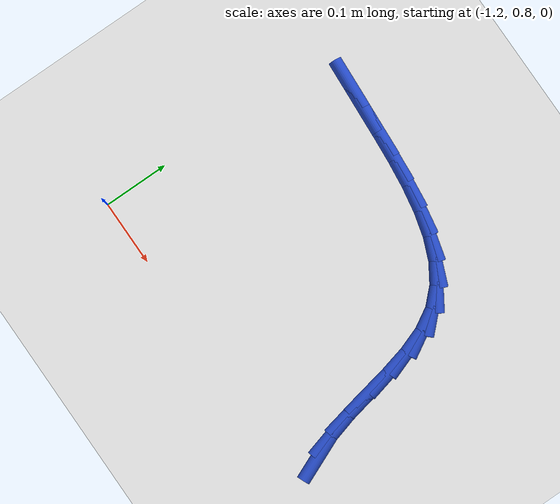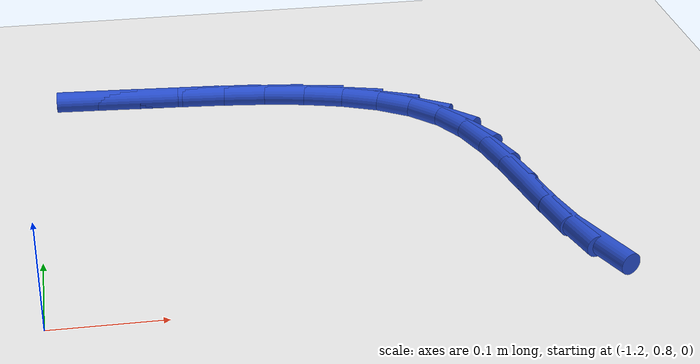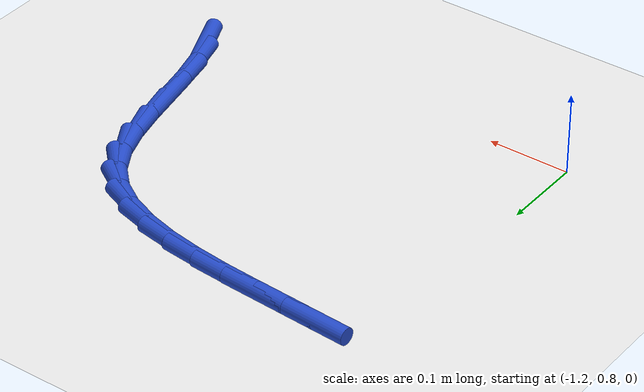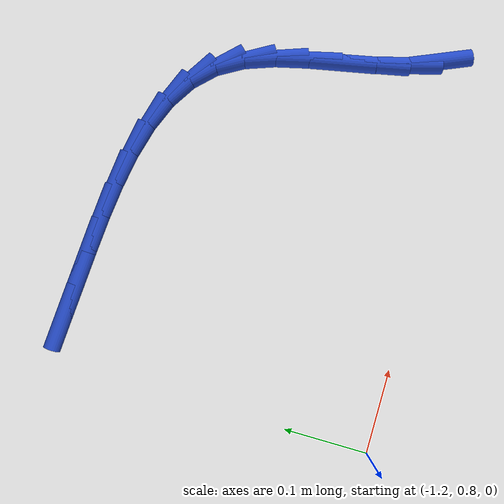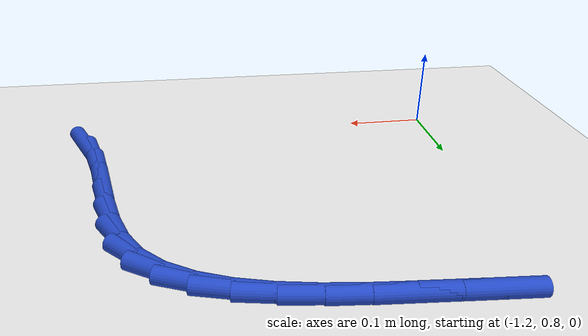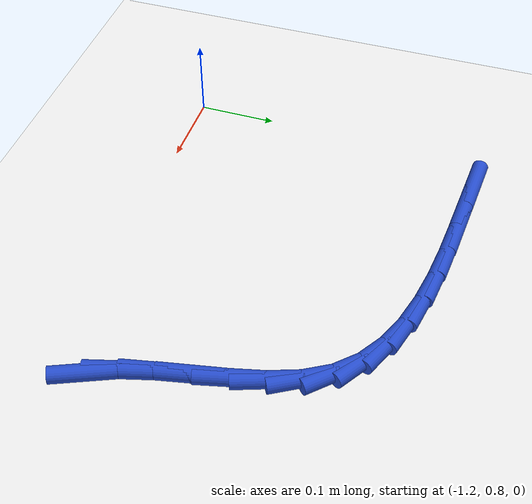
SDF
<sdf version="1.6">
 <world name="default">
  <model name="ground_plane">
   <static>1</static>
   <link name="link">
    <collision name="collision">
     <geometry><plane><normal>0 0 1</normal><size>100 100</size></plane></geometry>
     <surface><friction><ode><mu>100</mu><mu2>50</mu2></ode></friction></surface>
    </collision>
    <visual name="visual">
     <cast_shadows>0</cast_shadows>
     <geometry><plane><normal>0 0 1</normal><size>100 100</size></plane></geometry>
     <material>
      <script><uri>file://media/materials/scripts/gazebo.material</uri><name>Gazebo/WhiteGlow</name></script>
     </material>
    </visual>
   </link>
  </model>
  <model name="line">
   <link name="link_32">
    <pose>-0.7306457235936005 0.8423744090537564 0.01 0 1.57 -1.168081435696967</pose>
    <collision name="collision">
     <geometry><cylinder><radius>0.01</radius><length>0.08</length></cylinder></geometry>
    </collision>
    <visual name="visual">
     <material>
      <script><name>Gazebo/Blue</name><uri>file://media/materials/scripts/gazebo.material</uri></script>
     </material>
     <geometry><cylinder><radius>0.01</radius><length>0.08</length></cylinder></geometry>
    </visual>
   </link>
   <link name="link_33">
    <pose>-0.7447877772190492 0.8755719445588925 0.01 0 1.57 -1.3027888521186535</pose>
    <collision name="collision">
     <geometry><cylinder><radius>0.01</radius><length>0.08</length></cylinder></geometry>
    </collision>
    <visual name="visual">
     <material>
      <script><name>Gazebo/Blue</name><uri>file://media/materials/scripts/gazebo.material</uri></script>
     </material>
     <geometry><cylinder><radius>0.01</radius><length>0.08</length></cylinder></geometry>
    </visual>
   </link>
   <link name="link_34">
    <pose>-0.755007924955348 0.9127883330918626 0.01 0 1.57 -1.3681372646120227</pose>
    <collision name="collision">
     <geometry><cylinder><radius>0.01</radius><length>0.08</length></cylinder></geometry>
    </collision>
    <visual name="visual">
     <material>
      <script><name>Gazebo/Blue</name><uri>file://media/materials/scripts/gazebo.material</uri></script>
     </material>
     <geometry><cylinder><radius>0.01</radius><length>0.08</length></cylinder></geometry>
    </visual>
   </link>
   <link name="link_35">
    <pose>-0.7631154764235458 0.9522450049122431 0.01 0 1.57 -1.3777260906660382</pose>
    <collision name="collision">
     <geometry><cylinder><radius>0.01</radius><length>0.08</length></cylinder></geometry>
    </collision>
    <visual name="visual">
     <material>
      <script><name>Gazebo/Blue</name><uri>file://media/materials/scripts/gazebo.material</uri></script>
     </material>
     <geometry><cylinder><radius>0.01</radius><length>0.08</length></cylinder></geometry>
    </visual>
   </link>
   <link name="link_36">
    <pose>-0.7709197412446919 0.9921633902796094 0.01 0 1.57 -1.334126829078799</pose>
    <collision name="collision">
     <geometry><cylinder><radius>0.01</radius><length>0.08</length></cylinder></geometry>
    </collision>
    <visual name="visual">
     <material>
      <script><name>Gazebo/Blue</name><uri>file://media/materials/scripts/gazebo.material</uri></script>
     </material>
     <geometry><cylinder><radius>0.01</radius><length>0.08</length></cylinder></geometry>
    </visual>
   </link>
   <link name="link_37">
    <pose>-0.7802300290398345 1.030764919453538 0.01 0 1.57 -1.2291501292956815</pose>
    <collision name="collision">
     <geometry><cylinder><radius>0.01</radius><length>0.08</length></cylinder></geometry>
    </collision>
    <visual name="visual">
     <material>
      <script><name>Gazebo/Blue</name><uri>file://media/materials/scripts/gazebo.material</uri></script>
     </material>
     <geometry><cylinder><radius>0.01</radius><length>0.08</length></cylinder></geometry>
    </visual>
   </link>
   <link name="link_38">
    <pose>-0.7928556494300238 1.0662710226936056 0.01 0 1.57 -1.0456197366940465</pose>
    <collision name="collision">
     <geometry><cylinder><radius>0.01</radius><length>0.08</length></cylinder></geometry>
    </collision>
    <visual name="visual">
     <material>
      <script><name>Gazebo/Blue</name><uri>file://media/materials/scripts/gazebo.material</uri></script>
     </material>
     <geometry><cylinder><radius>0.01</radius><length>0.08</length></cylinder></geometry>
    </visual>
   </link>
   <link name="link_39">
    <pose>-0.8106057120175395 1.0969033129298695 0.01 0 1.57 -0.7941725816603435</pose>
    <collision name="collision">
     <geometry><cylinder><radius>0.01</radius><length>0.08</length></cylinder></geometry>
    </collision>
    <visual name="visual">
     <material>
      <script><name>Gazebo/Blue</name><uri>file://media/materials/scripts/gazebo.material</uri></script>
     </material>
     <geometry><cylinder><radius>0.01</radius><length>0.08</length></cylinder></geometry>
    </visual>
   </link>
   <link name="link_40">
    <pose>-0.8346986709791938 1.1214228290274817 0.01 0 1.57 -0.5655866208523501</pose>
    <collision name="collision">
     <geometry><cylinder><radius>0.01</radius><length>0.08</length></cylinder></geometry>
    </collision>
    <visual name="visual">
     <material>
      <script><name>Gazebo/Blue</name><uri>file://media/materials/scripts/gazebo.material</uri></script>
     </material>
     <geometry><cylinder><radius>0.01</radius><length>0.08</length></cylinder></geometry>
    </visual>
   </link>
   <link name="link_41">
    <pose>-0.8644634175951799 1.1403162847349129 0.01 0 1.57 -0.38907833267353564</pose>
    <collision name="collision">
     <geometry><cylinder><radius>0.01</radius><length>0.08</length></cylinder></geometry>
    </collision>
    <visual name="visual">
     <material>
      <script><name>Gazebo/Blue</name><uri>file://media/materials/scripts/gazebo.material</uri></script>
     </material>
     <geometry><cylinder><radius>0.01</radius><length>0.08</length></cylinder></geometry>
    </visual>
   </link>
   <link name="link_42">
    <pose>-0.8988517791090376 1.1544147538315281 0.01 0 1.57 -0.2608698189846857</pose>
    <collision name="collision">
     <geometry><cylinder><radius>0.01</radius><length>0.08</length></cylinder></geometry>
    </collision>
    <visual name="visual">
     <material>
      <script><name>Gazebo/Blue</name><uri>file://media/materials/scripts/gazebo.material</uri></script>
     </material>
     <geometry><cylinder><radius>0.01</radius><length>0.08</length></cylinder></geometry>
    </visual>
   </link>
   <link name="link_43">
    <pose>-0.9368155827643069 1.1645493100966922 0.01 0 1.57 -0.17122678400011776</pose>
    <collision name="collision">
     <geometry><cylinder><radius>0.01</radius><length>0.08</length></cylinder></geometry>
    </collision>
    <visual name="visual">
     <material>
      <script><name>Gazebo/Blue</name><uri>file://media/materials/scripts/gazebo.material</uri></script>
     </material>
     <geometry><cylinder><radius>0.01</radius><length>0.08</length></cylinder></geometry>
    </visual>
   </link>
   <link name="link_44">
    <pose>-0.977306655804528 1.1715510273097698 0.01 0 1.57 -0.11151854596318879</pose>
    <collision name="collision">
     <geometry><cylinder><radius>0.01</radius><length>0.08</length></cylinder></geometry>
    </collision>
    <visual name="visual">
     <material>
      <script><name>Gazebo/Blue</name><uri>file://media/materials/scripts/gazebo.material</uri></script>
     </material>
     <geometry><cylinder><radius>0.01</radius><length>0.08</length></cylinder></geometry>
    </visual>
   </link>
   <link name="link_45">
    <pose>-1.0192768254732398 1.1762509792501257 0.01 0 1.57 -0.0760130985941276</pose>
    <collision name="collision">
     <geometry><cylinder><radius>0.01</radius><length>0.08</length></cylinder></geometry>
    </collision>
    <visual name="visual">
     <material>
      <script><name>Gazebo/Blue</name><uri>file://media/materials/scripts/gazebo.material</uri></script>
     </material>
     <geometry><cylinder><radius>0.01</radius><length>0.08</length></cylinder></geometry>
    </visual>
   </link>
   <link name="link_46">
    <pose>-1.0616779190139827 1.1794802396971247 0.01 0 1.57 -0.06189795666822843</pose>
    <collision name="collision">
     <geometry><cylinder><radius>0.01</radius><length>0.08</length></cylinder></geometry>
    </collision>
    <visual name="visual">
     <material>
      <script><name>Gazebo/Blue</name><uri>file://media/materials/scripts/gazebo.material</uri></script>
     </material>
     <geometry><cylinder><radius>0.01</radius><length>0.08</length></cylinder></geometry>
    </visual>
   </link>
   <link name="link_47">
    <pose>-1.1034617636702966 1.182069882430132 0.01 0 1.57 -0.06379656134763402</pose>
    <collision name="collision">
     <geometry><cylinder><radius>0.01</radius><length>0.08</length></cylinder></geometry>
    </collision>
    <visual name="visual">
     <material>
      <script><name>Gazebo/Blue</name><uri>file://media/materials/scripts/gazebo.material</uri></script>
     </material>
     <geometry><cylinder><radius>0.01</radius><length>0.08</length></cylinder></geometry>
    </visual>
   </link>
   <link name="link_48">
    <pose>-1.1438059049551923 1.1846471974221366 0.01 0 1.57 -0.060404298847536425</pose>
    <collision name="collision">
     <geometry><cylinder><radius>0.01</radius><length>0.08</length></cylinder></geometry>
    </collision>
    <visual name="visual">
     <material>
      <script><name>Gazebo/Blue</name><uri>file://media/materials/scripts/gazebo.material</uri></script>
     </material>
     <geometry><cylinder><radius>0.01</radius><length>0.08</length></cylinder></geometry>
    </visual>
   </link>
  </model>
 </world>
</sdf>
